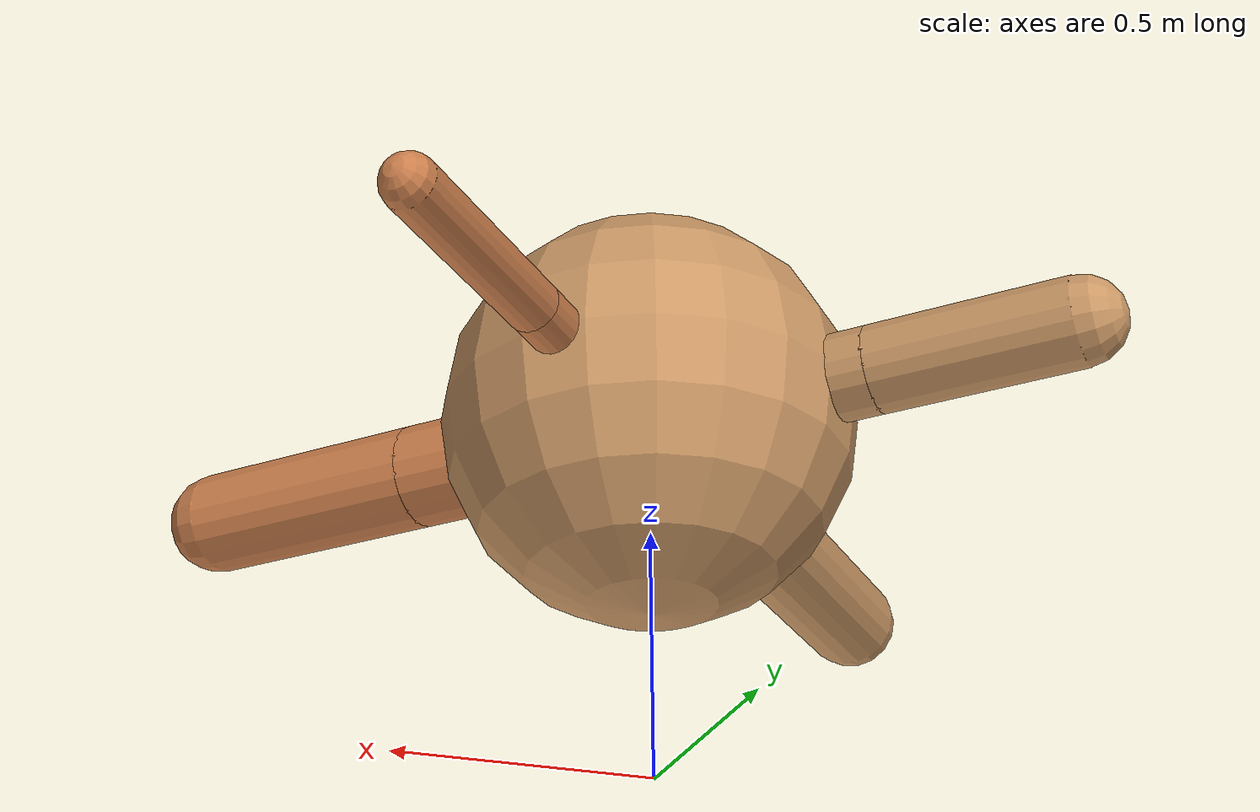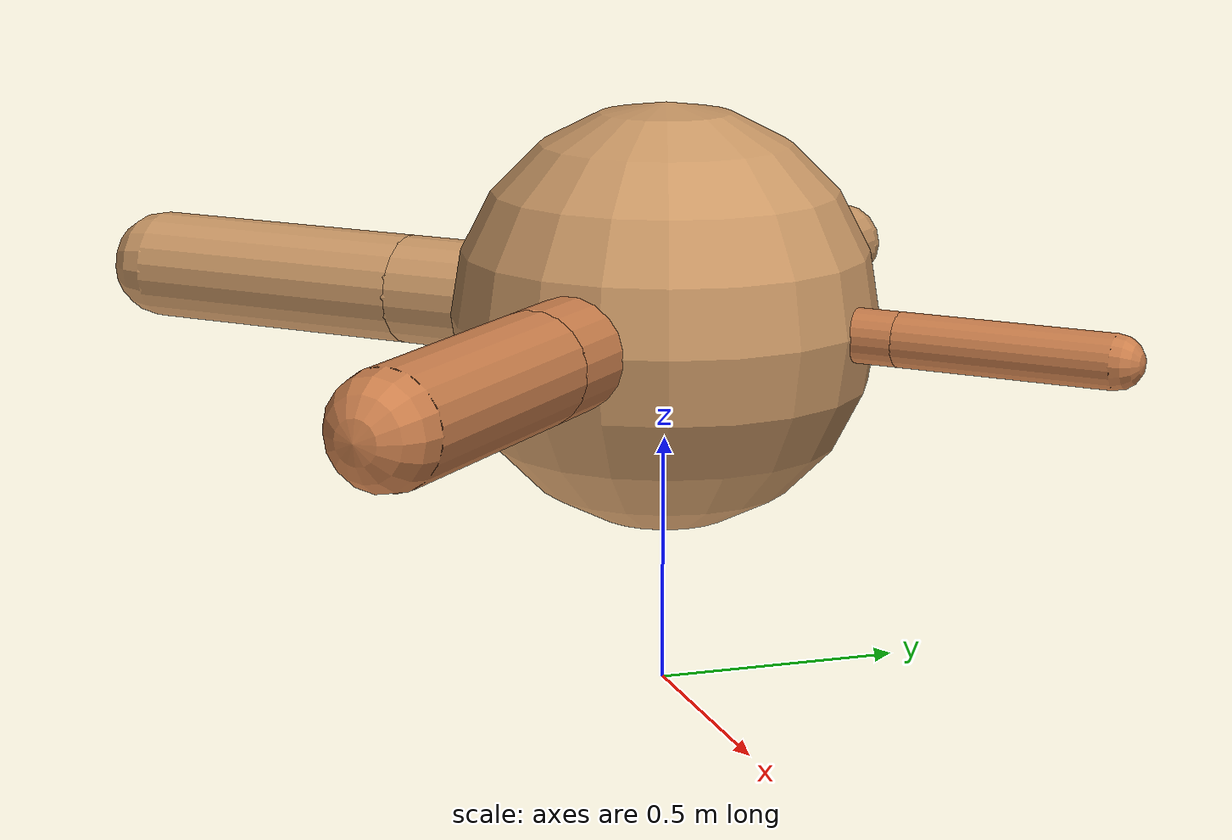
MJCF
<?xml version="1.0" ?>
<mujoco model="ant">

	<compiler angle="degree" coordinate="local" inertiafromgeom="true"/>

	<option integrator="RK4" timestep="0.01"/>

	<custom>

		<numeric data="0.0 0.0 0.55 1.0 0.0 0.0 0.0 0.0 1.0 0.0 -1.0 0.0 -1.0 0.0 1.0" name="init_qpos"/>

	</custom>

	<default>

		<joint armature="1" damping="1" limited="true"/>

		<geom conaffinity="0" condim="3" density="5.0" friction="1.5 0.1 0.1" margin="0.01" rgba="0.8 0.6 0.4 1"/>

	</default>

	<worldbody>

		<body name="torso" pos="0 0 0.75">

			<geom name="torso_geom" pos="0 0 0" size="0.4246559737025905" type="sphere"/>

			<!--joint armature="0" damping="0" limited="false" margin="0.01" name="root" pos="0 0 0" type="free"/-->

			<body name="front_left_leg" pos="0 0 0">

				<geom fromto="0 0 0 0.2 0.2 0" name="aux_1_geom" size="0.05358826051235734" type="capsule" rgba=".8 .5 .3 1"/>

				<body name="aux_1" pos="0.2 0.2 0">

					<joint axis="0 0 1" name="hip_1" pos="0.0 0.0 0.0" range="-40 40" type="hinge"/>

					<geom fromto="0 0 0 0.15220243122280164 0.15220243122280164 0" name="left_leg_geom" size="0.05358826051235734" type="capsule" rgba=".8 .5 .3 1"/>

					<body pos="0.15220243122280164 0.15220243122280164 0" name="front_left_foot">

						<joint axis="-1 1 0" name="ankle_1" pos="0.0 0.0 0.0" range="30 100" type="hinge"/>

						<geom fromto="0 0 0 0.3044048624456033 0.3044048624456033 0" name="left_ankle_geom" size="0.05358826051235734" type="capsule" rgba=".8 .5 .3 1"/>

					</body>

				</body>

			</body>

			<body name="front_right_leg" pos="0 0 0">

				<geom fromto="0 0 0 -0.2 0.2 0" name="aux_2_geom" size="0.08867675317916701" type="capsule"/>

				<body name="aux_2" pos="-0.2 0.2 0">

					<joint axis="0 0 1" name="hip_2" pos="0.0 0.0 0.0" range="-40 40" type="hinge"/>

					<geom fromto="0 0 0 -0.14191148900886447 0.14191148900886447 0" name="right_leg_geom" size="0.08867675317916701" type="capsule"/>

					<body pos="-0.14191148900886447 0.14191148900886447 0" name="front_right_foot">

						<joint axis="1 1 0" name="ankle_2" pos="0.0 0.0 0.0" range="-100 -30" type="hinge"/>

						<geom fromto="0 0 0 -0.28382297801772893 0.28382297801772893 0" name="right_ankle_geom" size="0.08867675317916701" type="capsule"/>

					</body>

				</body>

			</body>

			<body name="left_back_leg" pos="0 0 0">

				<geom fromto="0 0 0 -0.2 -0.2 0" name="aux_3_geom" size="0.11121255810589331" type="capsule"/>

				<body name="aux_3" pos="-0.2 -0.2 0">

					<joint axis="0 0 1" name="hip_3" pos="0.0 0.0 0.0" range="-40 40" type="hinge"/>

					<geom fromto="0 0 0 -0.21341346884302853 -0.21341346884302853 0" name="back_leg_geom" size="0.11121255810589331" type="capsule"/>

					<body pos="-0.21341346884302853 -0.21341346884302853 0" name="left_back_foot">

						<joint axis="-1 1 0" name="ankle_3" pos="0.0 0.0 0.0" range="-100 -30" type="hinge"/>

						<geom fromto="0 0 0 -0.42682693768605706 -0.42682693768605706 0" name="third_ankle_geom" size="0.11121255810589331" type="capsule"/>

					</body>

				</body>

			</body>

			<body name="right_back_leg" pos="0 0 0">

				<geom fromto="0 0 0 0.2 -0.2 0" name="aux_4_geom" size="0.1102810278063523" type="capsule" rgba=".8 .5 .3 1"/>

				<body name="aux_4" pos="0.2 -0.2 0">

					<joint axis="0 0 1" name="hip_4" pos="0.0 0.0 0.0" range="-40 40" type="hinge"/>

					<geom fromto="0 0 0 0.18580752589788607 -0.18580752589788607 0" name="rightback_leg_geom" size="0.1102810278063523" type="capsule" rgba=".8 .5 .3 1"/>

					<body pos="0.18580752589788607 -0.18580752589788607 0" name="right_back_foot">

						<joint axis="1 1 0" name="ankle_4" pos="0.0 0.0 0.0" range="30 100" type="hinge"/>

						<geom fromto="0 0 0 0.37161505179577214 -0.37161505179577214 0" name="fourth_ankle_geom" size="0.1102810278063523" type="capsule" rgba=".8 .5 .3 1"/>

					</body>

				</body>

			</body>

		</body>

	</worldbody>

	<actuator>

		<motor ctrllimited="true" ctrlrange="-1.0 1.0" joint="hip_4" gear="150"/>

		<motor ctrllimited="true" ctrlrange="-1.0 1.0" joint="ankle_4" gear="150"/>

		<motor ctrllimited="true" ctrlrange="-1.0 1.0" joint="hip_1" gear="150"/>

		<motor ctrllimited="true" ctrlrange="-1.0 1.0" joint="ankle_1" gear="150"/>

		<motor ctrllimited="true" ctrlrange="-1.0 1.0" joint="hip_2" gear="150"/>

		<motor ctrllimited="true" ctrlrange="-1.0 1.0" joint="ankle_2" gear="150"/>

		<motor ctrllimited="true" ctrlrange="-1.0 1.0" joint="hip_3" gear="150"/>

		<motor ctrllimited="true" ctrlrange="-1.0 1.0" joint="ankle_3" gear="150"/>

	</actuator>

</mujoco>
